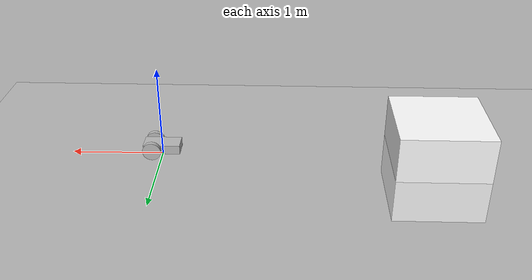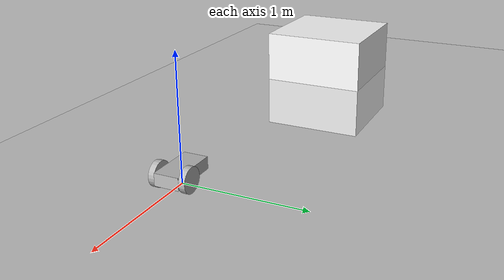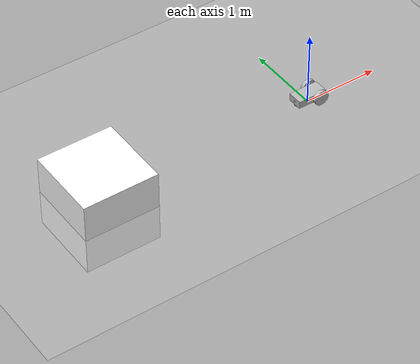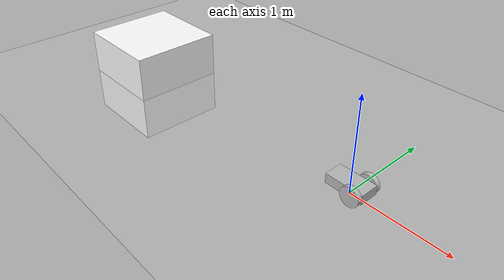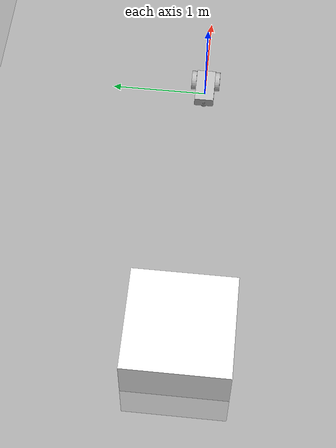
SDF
<?xml version="1.0" ?>
<sdf version="1.5">
  <world name="my_robot_world">
    <scene>
      <ambient>0.4 0.4 0.4 1</ambient>
      <background>0.1 0.1 0.1 1</background>
      <shadows>false</shadows>
    </scene>

    <light type="spot" name="some_light">
      <pose>-2.7 -2.3 1.0 1.5 0 0.7</pose>
      <diffuse>0.8 0.8 0.8 0</diffuse>
      <specular>1 1 1 0</specular>
      <attenuation>
        <range>20</range>
        <linear>0.01</linear>
        <constant>0.5</constant>
        <quadratic>0</quadratic>
      </attenuation>
      <spot>
	<inner_angle>0.6</inner_angle>
	<outer_angle>1</outer_angle>
	<falloff>1</falloff>
      </spot>
    </light>

    <!-- A ground plane -->
    <include>
      <uri>model://ground_plane</uri>
    </include>

    <!-- simple box model -->
    <model name="box">
      <static>false</static>
      <link name='main_link'>
	<pose>-3 0 0 0 0 0</pose>
	<inertial>
	  <mass>1</mass>
	  <inertia>
            <ixx>0.0</ixx>       <!-- for a box: ixx = 0.083 * mass * (y*y + z*z) -->
            <ixy>0.0</ixy>           <!-- for a box: ixy = 0 -->
            <ixz>0.0</ixz>           <!-- for a box: ixz = 0 -->
            <iyy>0.747</iyy>      <!-- for a box: iyy = 0.083 * mass * (x*x + z*z) -->
            <iyz>0.0</iyz>           <!-- for a box: iyz = 0 -->
            <izz>0.747</izz>       <!-- for a box: izz = 0.083 * mass * (x*x + y*y) -->
	  </inertia>
	</inertial>
        <collision name='collision'>
          <geometry>
            <box>
              <size>1 1 1</size>
            </box>
          </geometry>
        </collision>
        <visual name='visual'>
          <geometry>
            <box>
              <size>1 1 1</size>
            </box>
          </geometry>
	  <material>
            <ambient>0.1 0.1 0.1 1</ambient>
            <diffuse>1 1 1 1</diffuse>
            <specular>0 0 0 0</specular>
            <emissive>0 0 0 1</emissive>
          </material>
        </visual>
      </link>
    </model>

    <!-- robot model -->
    <model name="my_robot">
      <static>false</static>
      <link name='chassis'>
        <pose>0 0 .1 0 0 0</pose>
	<inertial>
	  <mass>0.2</mass>
	  <inertia>
            <ixx>0.00083</ixx>       <!-- for a box: ixx = 0.083 * mass * (y*y + z*z) -->
            <ixy>0.0</ixy>           <!-- for a box: ixy = 0 -->
            <ixz>0.0</ixz>           <!-- for a box: ixz = 0 -->
            <iyy>0.002822</iyy>      <!-- for a box: iyy = 0.083 * mass * (x*x + z*z) -->
            <iyz>0.0</iyz>           <!-- for a box: iyz = 0 -->
            <izz>0.00332</izz>       <!-- for a box: izz = 0.083 * mass * (x*x + y*y) -->
	  </inertia>
	</inertial>
        <collision name='collision'>
          <geometry>
            <box>
              <size>.4 .2 .1</size>
            </box>
          </geometry>
        </collision>
        <visual name='visual'>
          <geometry>
            <box>
              <size>.4 .2 .1</size>
            </box>
          </geometry>
        </visual>
        <collision name='caster_collision'>
          <pose>-0.15 0 -0.05 0 0 0</pose>
          <geometry>
            <sphere>
              <radius>.05</radius>
            </sphere>
          </geometry>
          <surface>
            <friction>
              <ode>
                <mu>0</mu>
                <mu2>0</mu2>
                <slip1>1.0</slip1>
                <slip2>1.0</slip2>
              </ode>
            </friction>
          </surface>
        </collision>
        <visual name='caster_visual'>
          <pose>-0.15 0 -0.05 0 0 0</pose>
          <geometry>
            <sphere>
              <radius>.05</radius>
            </sphere>
          </geometry>
        </visual>
      </link>

      <link name="right_wheel">
        <pose>0.1 0.125 0.1 0 1.5707 1.5707</pose>
	<inertial>
	  <mass>0.1</mass>
	  <inertia>
            <ixx>0.00026975</ixx>
            <iyy>0.00026975</iyy>
            <izz>0.0005</izz>
            <ixy>0</ixy>
            <ixz>0</ixz>
            <iyz>0</iyz>
	  </inertia>
	</inertial>
        <collision name="collision">
          <geometry>
            <cylinder>
              <radius>.1</radius>
              <length>.05</length>
            </cylinder>
          </geometry>
	  <surface>
            <friction>
              <ode>
                <mu>0.72</mu>
                <mu2>0.72</mu2>
              </ode>
            </friction>
          </surface>
        </collision>
        <visual name="visual">
          <geometry>
            <cylinder>
              <radius>.1</radius>
              <length>.05</length>
            </cylinder>
          </geometry>
        </visual>
      </link>

      <link name="left_wheel">
        <pose>0.1 -0.125 0.1 0 1.5707 1.5707</pose>
	<inertial>
	  <mass>0.1</mass>
	  <inertia>
            <ixx>0.00026975</ixx>
            <iyy>0.00026975</iyy>
            <izz>0.0005</izz>
            <ixy>0</ixy>
            <ixz>0</ixz>
            <iyz>0</iyz>
	  </inertia>
	</inertial>
        <collision name="collision">
          <geometry>
            <cylinder>
              <radius>.1</radius>
              <length>.05</length>
            </cylinder>
          </geometry>
	  <surface>
            <friction>
              <ode>
                <mu>0.72</mu>
                <mu2>0.72</mu2>
              </ode>
            </friction>
          </surface>
        </collision>
        <visual name="visual">
          <geometry>
            <cylinder>
              <radius>.1</radius>
              <length>.05</length>
            </cylinder>
          </geometry>
        </visual>
      </link>

      <link name='camera_link'>
        <pose>-0.2 0 0.1 0 0 3.14159</pose>
        <inertial>
          <mass>0.01</mass>
          <inertia>
            <ixx>0.000000664</ixx>
            <iyy>0.000000664</iyy>
            <izz>0.000000664</izz>
            <ixy>0</ixy>
            <ixz>0</ixz>
            <iyz>0</iyz>
          </inertia>
        </inertial>
        <collision name='collision'>
          <geometry>
            <box>
	      <size>0.02 0.02 0.02</size>
            </box>
          </geometry>
        </collision>
        <visual name='visual'>
          <geometry>
            <box>
	      <size>0.02 0.02 0.02</size>
            </box>
          </geometry>
        </visual>
        <sensor name='camera' type='camera'>
          <camera name='__default__'>
            <horizontal_fov>1.047</horizontal_fov>
            <image>
	      <width>320</width>
	      <height>240</height>
            </image>
            <clip>
	      <near>0.1</near>
	      <far>100</far>
            </clip>
          </camera>
	  <plugin name="gazebo_light_sensor_plugin" filename="libgazebo_light_sensor_plugin.so">
	    <baseline>0.2</baseline>
            <alwaysOn>1</alwaysOn>
		 <updateRate>0.0</updateRate>
		 <cameraName>camera</cameraName>
		 <imageTopicName>rgb/image_raw</imageTopicName>
		 <depthImageTopicName>depth/image_raw</depthImageTopicName>
		 <pointCloudTopicName>depth/points</pointCloudTopicName>
		 <cameraInfoTopicName>rgb/camera_info</cameraInfoTopicName>
		 <depthImageCameraInfoTopicName>depth/camera_info</depthImageCameraInfoTopicName>
		 <frameName>camera_link</frameName>
		 <pointCloudCutoff>0.1</pointCloudCutoff>
		 <pointCloudCutoffMax>10.0</pointCloudCutoffMax>
		 <distortionK1>0.0</distortionK1>
		 <distortionK2>0.0</distortionK2>
		 <distortionK3>0.0</distortionK3>
		 <distortionT1>0.0</distortionT1>
		 <distortionT2>0.0</distortionT2>
		 <CxPrime>0</CxPrime>
		 <Cx>0</Cx>
		 <Cy>0</Cy>
		 <focalLength>0</focalLength>
		 <hackBaseline>0</hackBaseline>
	       </plugin>
               <always_on>1</always_on>
               <update_rate>30</update_rate>
               <visualize>1</visualize>
             </sensor>
	   </link>

	   <joint name="camara_joint" type="fixed">
	     <child>camera_link</child>
	     <parent>chassis</parent>
	   </joint>

	   <joint type="revolute" name="right_wheel_hinge">
             <pose>0 0 -0.03 0 0 0</pose>
             <child>right_wheel</child>
             <parent>chassis</parent>
             <axis>
               <xyz>0 0 1</xyz>
             </axis>
	   </joint>

	   <joint type="revolute" name="left_wheel_hinge">
             <pose>0 0 0.03 0 0 0</pose>
             <child>left_wheel</child>
             <parent>chassis</parent>
             <axis>
               <xyz>0 0 -1</xyz>
             </axis>
	   </joint>
	 </model>
       </world>
     </sdf>
